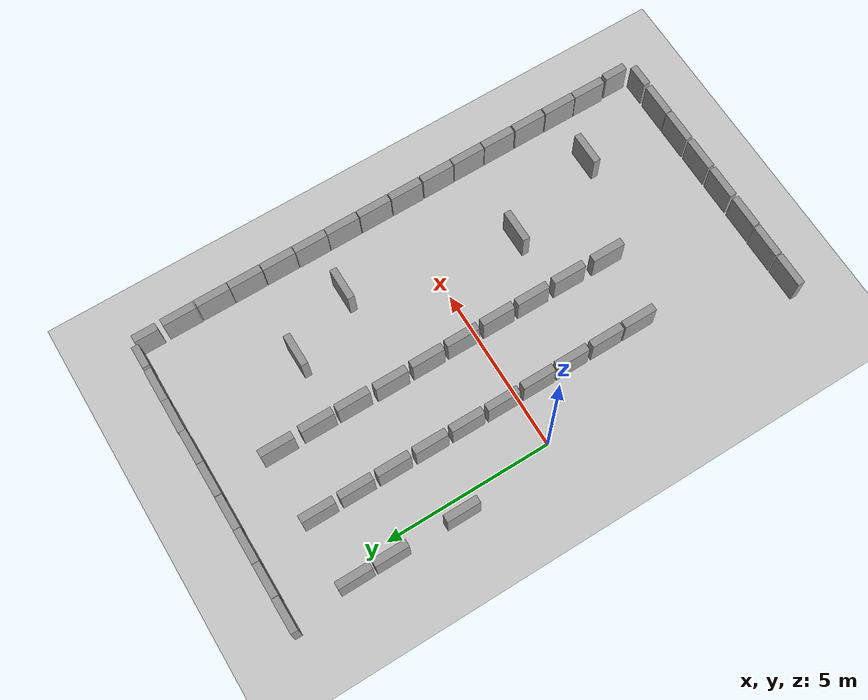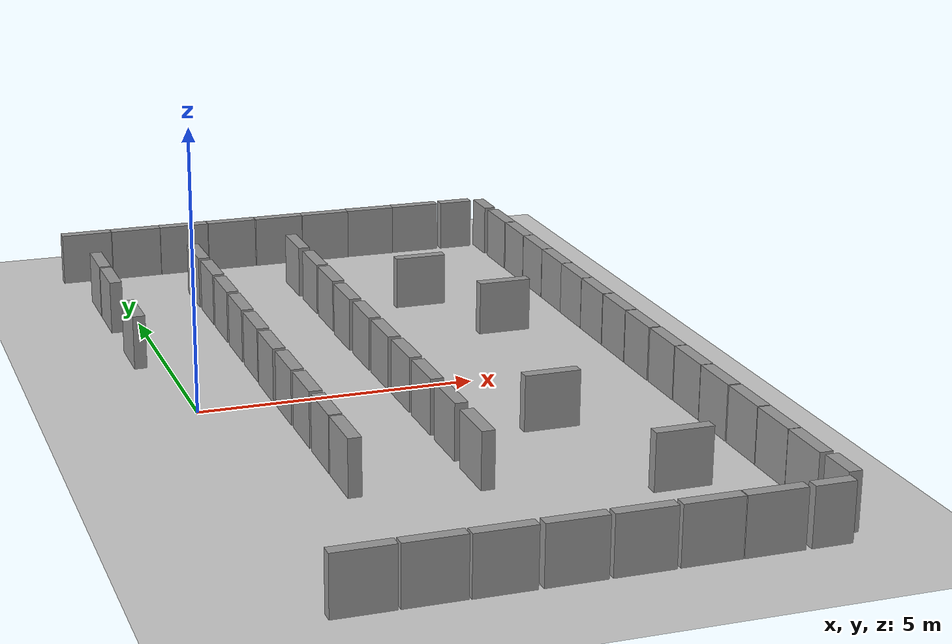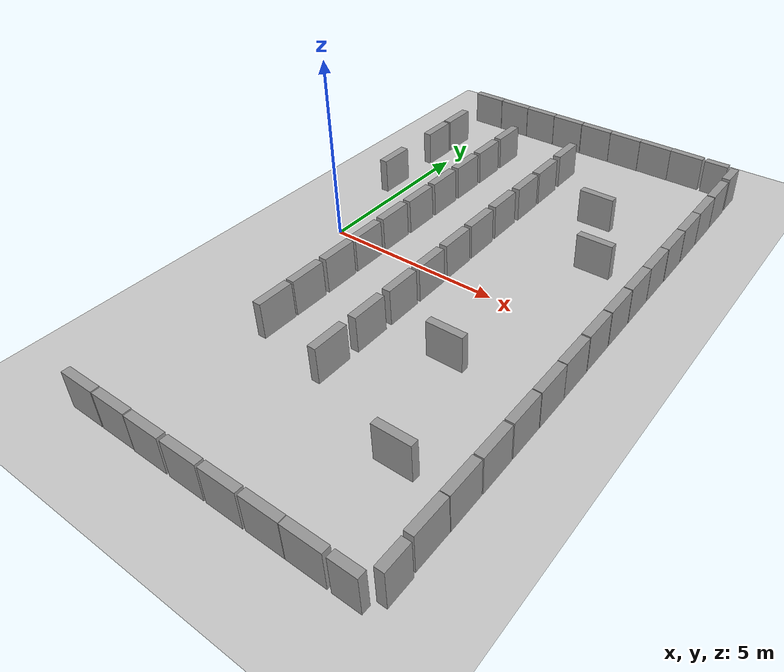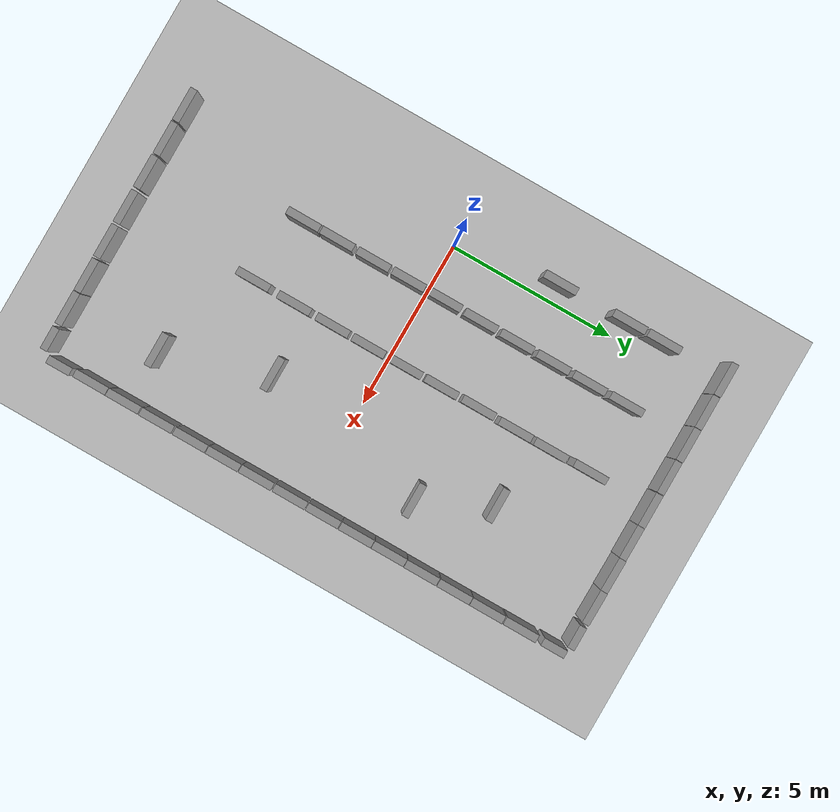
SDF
<sdf version="1.6">
 <world name="default">
  <model name="ground_plane">
   <static>1</static>
   <static>1</static>
   <link name="link">
    <collision name="collision">
     <geometry><plane><normal>0 0 1</normal><size>100 100</size></plane></geometry>
     <surface><friction><ode><mu>100</mu><mu2>50</mu2></ode></friction></surface>
    </collision>
    <visual name="visual">
     <cast_shadows>0</cast_shadows>
     <geometry><plane><normal>0 0 1</normal><size>100 100</size></plane></geometry>
     <material>
      <script><uri>file://media/materials/scripts/gazebo.material</uri><name>Gazebo/Grey</name></script>
     </material>
    </visual>
   </link>
  </model>
  <model name="unit_box_clone_6">
   <pose>-0.418694 8.11833 0.500001 0 -2e-06 6.5e-05</pose>
   <link name="link">
    <inertial>
     <mass>1</mass>
     <inertia>
      <ixx>0.166667</ixx>
      <ixy>0</ixy>
      <ixz>0</ixz>
      <iyy>0.166667</iyy>
      <iyz>0</iyz>
      <izz>0.166667</izz>
     </inertia>
    </inertial>
    <collision name="collision"><geometry><box><size>1 0.210541 1</size></box></geometry></collision>
    <visual name="visual">
     <geometry><box><size>1 0.210541 1</size></box></geometry>
     <material>
      <script><name>Gazebo/Grey</name><uri>file://media/materials/scripts/gazebo.material</uri></script>
     </material>
    </visual>
   </link>
  </model>
  <model name="unit_box_clone_7">
   <pose>0.592825 8.1112 0.500001 0 -2e-06 6.5e-05</pose>
   <link name="link">
    <inertial>
     <mass>1</mass>
     <inertia>
      <ixx>0.166667</ixx>
      <ixy>0</ixy>
      <ixz>0</ixz>
      <iyy>0.166667</iyy>
      <iyz>0</iyz>
      <izz>0.166667</izz>
     </inertia>
    </inertial>
    <collision name="collision"><geometry><box><size>1 0.210541 1</size></box></geometry></collision>
    <visual name="visual">
     <geometry><box><size>1 0.210541 1</size></box></geometry>
     <material>
      <script><name>Gazebo/Grey</name><uri>file://media/materials/scripts/gazebo.material</uri></script>
     </material>
    </visual>
   </link>
  </model>
  <model name="unit_box_clone_8">
   <pose>1.60042 8.10971 0.500001 0 -2e-06 6.5e-05</pose>
   <link name="link">
    <inertial>
     <mass>1</mass>
     <inertia>
      <ixx>0.166667</ixx>
      <ixy>0</ixy>
      <ixz>0</ixz>
      <iyy>0.166667</iyy>
      <iyz>0</iyz>
      <izz>0.166667</izz>
     </inertia>
    </inertial>
    <collision name="collision"><geometry><box><size>1 0.210541 1</size></box></geometry></collision>
    <visual name="visual">
     <geometry><box><size>1 0.210541 1</size></box></geometry>
     <material>
      <script><name>Gazebo/Grey</name><uri>file://media/materials/scripts/gazebo.material</uri></script>
     </material>
    </visual>
   </link>
  </model>
  <model name="unit_box_clone_9">
   <pose>2.60986 8.10252 0.500001 0 -2e-06 6.5e-05</pose>
   <link name="link">
    <inertial>
     <mass>1</mass>
     <inertia>
      <ixx>0.166667</ixx>
      <ixy>0</ixy>
      <ixz>0</ixz>
      <iyy>0.166667</iyy>
      <iyz>0</iyz>
      <izz>0.166667</izz>
     </inertia>
    </inertial>
    <collision name="collision"><geometry><box><size>1 0.210541 1</size></box></geometry></collision>
    <visual name="visual">
     <geometry><box><size>1 0.210541 1</size></box></geometry>
     <material>
      <script><name>Gazebo/Grey</name><uri>file://media/materials/scripts/gazebo.material</uri></script>
     </material>
    </visual>
   </link>
  </model>
  <model name="unit_box_clone_10">
   <pose>3.62648 8.09893 0.500001 0 -2e-06 6.5e-05</pose>
   <link name="link">
    <inertial>
     <mass>1</mass>
     <inertia>
      <ixx>0.166667</ixx>
      <ixy>0</ixy>
      <ixz>0</ixz>
      <iyy>0.166667</iyy>
      <iyz>0</iyz>
      <izz>0.166667</izz>
     </inertia>
    </inertial>
    <collision name="collision"><geometry><box><size>1 0.210541 1</size></box></geometry></collision>
    <visual name="visual">
     <geometry><box><size>1 0.210541 1</size></box></geometry>
     <material>
      <script><name>Gazebo/Grey</name><uri>file://media/materials/scripts/gazebo.material</uri></script>
     </material>
    </visual>
   </link>
  </model>
  <model name="unit_box_clone_11">
   <pose>4.63313 8.09552 0.49995 -0 -1e-06 -0.003223</pose>
   <link name="link">
    <inertial>
     <mass>1</mass>
     <inertia>
      <ixx>0.166667</ixx>
      <ixy>0</ixy>
      <ixz>0</ixz>
      <iyy>0.166667</iyy>
      <iyz>0</iyz>
      <izz>0.166667</izz>
     </inertia>
    </inertial>
    <collision name="collision"><geometry><box><size>1 0.210541 1</size></box></geometry></collision>
    <visual name="visual">
     <geometry><box><size>1 0.210541 1</size></box></geometry>
     <material>
      <script><name>Gazebo/Grey</name><uri>file://media/materials/scripts/gazebo.material</uri></script>
     </material>
    </visual>
   </link>
  </model>
  <model name="unit_box_clone_12">
   <pose>5.63393 8.10254 0.499997 -1e-06 -6e-06 -0.010652</pose>
   <link name="link">
    <inertial>
     <mass>1</mass>
     <inertia>
      <ixx>0.166667</ixx>
      <ixy>0</ixy>
      <ixz>0</ixz>
      <iyy>0.166667</iyy>
      <iyz>0</iyz>
      <izz>0.166667</izz>
     </inertia>
    </inertial>
    <collision name="collision"><geometry><box><size>1 0.210541 1</size></box></geometry></collision>
    <visual name="visual">
     <geometry><box><size>1 0.210541 1</size></box></geometry>
     <material>
      <script><name>Gazebo/Grey</name><uri>file://media/materials/scripts/gazebo.material</uri></script>
     </material>
    </visual>
   </link>
  </model>
  <model name="unit_box_clone_13">
   <pose>6.63405 8.10023 0.49999 1e-06 0 -0.011395</pose>
   <link name="link">
    <inertial>
     <mass>1</mass>
     <inertia>
      <ixx>0.166667</ixx>
      <ixy>0</ixy>
      <ixz>0</ixz>
      <iyy>0.166667</iyy>
      <iyz>0</iyz>
      <izz>0.166667</izz>
     </inertia>
    </inertial>
    <collision name="collision"><geometry><box><size>1 0.210541 1</size></box></geometry></collision>
    <visual name="visual">
     <geometry><box><size>1 0.210541 1</size></box></geometry>
     <material>
      <script><name>Gazebo/Grey</name><uri>file://media/materials/scripts/gazebo.material</uri></script>
     </material>
    </visual>
   </link>
  </model>
  <model name="unit_box_0_clone_0">
   <pose>8.11279 6.68232 0.5 0 -0 7.5e-05</pose>
   <link name="link">
    <inertial>
     <mass>1</mass>
     <inertia>
      <ixx>0.166667</ixx>
      <ixy>0</ixy>
      <ixz>0</ixz>
      <iyy>0.166667</iyy>
      <iyz>0</iyz>
      <izz>0.166667</izz>
     </inertia>
    </inertial>
    <collision name="collision"><geometry><box><size>0.230819 1 1</size></box></geometry></collision>
    <visual name="visual">
     <geometry><box><size>0.230819 1 1</size></box></geometry>
     <material>
      <script><name>Gazebo/Grey</name><uri>file://media/materials/scripts/gazebo.material</uri></script>
     </material>
    </visual>
   </link>
  </model>
  <model name="unit_box_0_clone_1">
   <pose>8.11915 5.6517 0.5 0 -0 7.5e-05</pose>
   <link name="link">
    <inertial>
     <mass>1</mass>
     <inertia>
      <ixx>0.166667</ixx>
      <ixy>0</ixy>
      <ixz>0</ixz>
      <iyy>0.166667</iyy>
      <iyz>0</iyz>
      <izz>0.166667</izz>
     </inertia>
    </inertial>
    <collision name="collision"><geometry><box><size>0.230819 1 1</size></box></geometry></collision>
    <visual name="visual">
     <geometry><box><size>0.230819 1 1</size></box></geometry>
     <material>
      <script><name>Gazebo/Grey</name><uri>file://media/materials/scripts/gazebo.material</uri></script>
     </material>
    </visual>
   </link>
  </model>
  <model name="unit_box_0_clone_2">
   <pose>8.11914 4.64017 0.5 0 -0 7.5e-05</pose>
   <link name="link">
    <inertial>
     <mass>1</mass>
     <inertia>
      <ixx>0.166667</ixx>
      <ixy>0</ixy>
      <ixz>0</ixz>
      <iyy>0.166667</iyy>
      <iyz>0</iyz>
      <izz>0.166667</izz>
     </inertia>
    </inertial>
    <collision name="collision"><geometry><box><size>0.230819 1 1</size></box></geometry></collision>
    <visual name="visual">
     <geometry><box><size>0.230819 1 1</size></box></geometry>
     <material>
      <script><name>Gazebo/Grey</name><uri>file://media/materials/scripts/gazebo.material</uri></script>
     </material>
    </visual>
   </link>
  </model>
  <model name="unit_box_0_clone_3">
   <pose>8.11914 3.62227 0.5 0 -0 7.5e-05</pose>
   <link name="link">
    <inertial>
     <mass>1</mass>
     <inertia>
      <ixx>0.166667</ixx>
      <ixy>0</ixy>
      <ixz>0</ixz>
      <iyy>0.166667</iyy>
      <iyz>0</iyz>
      <izz>0.166667</izz>
     </inertia>
    </inertial>
    <collision name="collision"><geometry><box><size>0.230819 1 1</size></box></geometry></collision>
    <visual name="visual">
     <geometry><box><size>0.230819 1 1</size></box></geometry>
     <material>
      <script><name>Gazebo/Grey</name><uri>file://media/materials/scripts/gazebo.material</uri></script>
     </material>
    </visual>
   </link>
  </model>
  <model name="unit_box_0_clone_4">
   <pose>8.11278 2.61074 0.5 0 -0 7.5e-05</pose>
   <link name="link">
    <inertial>
     <mass>1</mass>
     <inertia>
      <ixx>0.166667</ixx>
      <ixy>0</ixy>
      <ixz>0</ixz>
      <iyy>0.166667</iyy>
      <iyz>0</iyz>
      <izz>0.166667</izz>
     </inertia>
    </inertial>
    <collision name="collision"><geometry><box><size>0.230819 1 1</size></box></geometry></collision>
    <visual name="visual">
     <geometry><box><size>0.230819 1 1</size></box></geometry>
     <material>
      <script><name>Gazebo/Grey</name><uri>file://media/materials/scripts/gazebo.material</uri></script>
     </material>
    </visual>
   </link>
  </model>
  <model name="unit_box_0_clone_5">
   <pose>8.11277 1.5992 0.5 0 -0 7.5e-05</pose>
   <link name="link">
    <inertial>
     <mass>1</mass>
     <inertia>
      <ixx>0.166667</ixx>
      <ixy>0</ixy>
      <ixz>0</ixz>
      <iyy>0.166667</iyy>
      <iyz>0</iyz>
      <izz>0.166667</izz>
     </inertia>
    </inertial>
    <collision name="collision"><geometry><box><size>0.230819 1 1</size></box></geometry></collision>
    <visual name="visual">
     <geometry><box><size>0.230819 1 1</size></box></geometry>
     <material>
      <script><name>Gazebo/Grey</name><uri>file://media/materials/scripts/gazebo.material</uri></script>
     </material>
    </visual>
   </link>
  </model>
  <model name="unit_box_0_clone_6">
   <pose>8.11277 0.574942 0.5 0 -0 7.5e-05</pose>
   <link name="link">
    <inertial>
     <mass>1</mass>
     <inertia>
      <ixx>0.166667</ixx>
      <ixy>0</ixy>
      <ixz>0</ixz>
      <iyy>0.166667</iyy>
      <iyz>0</iyz>
      <izz>0.166667</izz>
     </inertia>
    </inertial>
    <collision name="collision"><geometry><box><size>0.230819 1 1</size></box></geometry></collision>
    <visual name="visual">
     <geometry><box><size>0.230819 1 1</size></box></geometry>
     <material>
      <script><name>Gazebo/Grey</name><uri>file://media/materials/scripts/gazebo.material</uri></script>
     </material>
    </visual>
   </link>
  </model>
  <model name="unit_box_0_clone_7">
   <pose>8.11276 -0.449316 0.5 0 -0 7.5e-05</pose>
   <link name="link">
    <inertial>
     <mass>1</mass>
     <inertia>
      <ixx>0.166667</ixx>
      <ixy>0</ixy>
      <ixz>0</ixz>
      <iyy>0.166667</iyy>
      <iyz>0</iyz>
      <izz>0.166667</izz>
     </inertia>
    </inertial>
    <collision name="collision"><geometry><box><size>0.230819 1 1</size></box></geometry></collision>
    <visual name="visual">
     <geometry><box><size>0.230819 1 1</size></box></geometry>
     <material>
      <script><name>Gazebo/Grey</name><uri>file://media/materials/scripts/gazebo.material</uri></script>
     </material>
    </visual>
   </link>
  </model>
  <model name="unit_box_0_clone_8">
   <pose>8.11912 -1.4863 0.5 0 -0 7.5e-05</pose>
   <link name="link">
    <inertial>
     <mass>1</mass>
     <inertia>
      <ixx>0.166667</ixx>
      <ixy>0</ixy>
      <ixz>0</ixz>
      <iyy>0.166667</iyy>
      <iyz>0</iyz>
      <izz>0.166667</izz>
     </inertia>
    </inertial>
    <collision name="collision"><geometry><box><size>0.230819 1 1</size></box></geometry></collision>
    <visual name="visual">
     <geometry><box><size>0.230819 1 1</size></box></geometry>
     <material>
      <script><name>Gazebo/Grey</name><uri>file://media/materials/scripts/gazebo.material</uri></script>
     </material>
    </visual>
   </link>
  </model>
  <model name="unit_box_0_clone_9">
   <pose>8.12548 -2.5042 0.5 0 -0 7.5e-05</pose>
   <link name="link">
    <inertial>
     <mass>1</mass>
     <inertia>
      <ixx>0.166667</ixx>
      <ixy>0</ixy>
      <ixz>0</ixz>
      <iyy>0.166667</iyy>
      <iyz>0</iyz>
      <izz>0.166667</izz>
     </inertia>
    </inertial>
    <collision name="collision"><geometry><box><size>0.230819 1 1</size></box></geometry></collision>
    <visual name="visual">
     <geometry><box><size>0.230819 1 1</size></box></geometry>
     <material>
      <script><name>Gazebo/Grey</name><uri>file://media/materials/scripts/gazebo.material</uri></script>
     </material>
    </visual>
   </link>
  </model>
  <model name="unit_box_0_clone_10">
   <pose>8.12331 -3.52222 0.5 0 -0 7.5e-05</pose>
   <link name="link">
    <inertial>
     <mass>1</mass>
     <inertia>
      <ixx>0.166667</ixx>
      <ixy>0</ixy>
      <ixz>0</ixz>
      <iyy>0.166667</iyy>
      <iyz>0</iyz>
      <izz>0.166667</izz>
     </inertia>
    </inertial>
    <collision name="collision"><geometry><box><size>0.230819 1 1</size></box></geometry></collision>
    <visual name="visual">
     <geometry><box><size>0.230819 1 1</size></box></geometry>
     <material>
      <script><name>Gazebo/Grey</name><uri>file://media/materials/scripts/gazebo.material</uri></script>
     </material>
    </visual>
   </link>
  </model>
  <model name="unit_box_0_clone_11">
   <pose>8.1233 -4.56315 0.5 0 -0 7.5e-05</pose>
   <link name="link">
    <inertial>
     <mass>1</mass>
     <inertia>
      <ixx>0.166667</ixx>
      <ixy>0</ixy>
      <ixz>0</ixz>
      <iyy>0.166667</iyy>
      <iyz>0</iyz>
      <izz>0.166667</izz>
     </inertia>
    </inertial>
    <collision name="collision"><geometry><box><size>0.230819 1 1</size></box></geometry></collision>
    <visual name="visual">
     <geometry><box><size>0.230819 1 1</size></box></geometry>
     <material>
      <script><name>Gazebo/Grey</name><uri>file://media/materials/scripts/gazebo.material</uri></script>
     </material>
    </visual>
   </link>
  </model>
  <model name="unit_box_0_clone_12">
   <pose>8.11815 -5.59377 0.5 0 -0 7.5e-05</pose>
   <link name="link">
    <inertial>
     <mass>1</mass>
     <inertia>
      <ixx>0.166667</ixx>
      <ixy>0</ixy>
      <ixz>0</ixz>
      <iyy>0.166667</iyy>
      <iyz>0</iyz>
      <izz>0.166667</izz>
     </inertia>
    </inertial>
    <collision name="collision"><geometry><box><size>0.230819 1 1</size></box></geometry></collision>
    <visual name="visual">
     <geometry><box><size>0.230819 1 1</size></box></geometry>
     <material>
      <script><name>Gazebo/Grey</name><uri>file://media/materials/scripts/gazebo.material</uri></script>
     </material>
    </visual>
   </link>
  </model>
  <model name="unit_box_0_clone_13">
   <pose>8.11333 -6.60775 0.499998 3e-06 1e-06 -0.00551</pose>
   <link name="link">
    <inertial>
     <mass>1</mass>
     <inertia>
      <ixx>0.166667</ixx>
      <ixy>0</ixy>
      <ixz>0</ixz>
      <iyy>0.166667</iyy>
      <iyz>0</iyz>
      <izz>0.166667</izz>
     </inertia>
    </inertial>
    <collision name="collision"><geometry><box><size>0.230819 1 1</size></box></geometry></collision>
    <visual name="visual">
     <geometry><box><size>0.230819 1 1</size></box></geometry>
     <material>
      <script><name>Gazebo/Grey</name><uri>file://media/materials/scripts/gazebo.material</uri></script>
     </material>
    </visual>
   </link>
  </model>
  <model name="unit_box_clone_15_clone_0">
   <pose>6.71206 -8.13139 0.500001 0 -2e-06 6.5e-05</pose>
   <link name="link">
    <inertial>
     <mass>1</mass>
     <inertia>
      <ixx>0.166667</ixx>
      <ixy>0</ixy>
      <ixz>0</ixz>
      <iyy>0.166667</iyy>
      <iyz>0</iyz>
      <izz>0.166667</izz>
     </inertia>
    </inertial>
    <collision name="collision"><geometry><box><size>1 0.210541 1</size></box></geometry></collision>
    <visual name="visual">
     <geometry><box><size>1 0.210541 1</size></box></geometry>
     <material>
      <script><name>Gazebo/Grey</name><uri>file://media/materials/scripts/gazebo.material</uri></script>
     </material>
    </visual>
   </link>
  </model>
  <model name="unit_box_clone_15_clone_1">
   <pose>5.69714 -8.13138 0.500001 0 -2e-06 6.5e-05</pose>
   <link name="link">
    <inertial>
     <mass>1</mass>
     <inertia>
      <ixx>0.166667</ixx>
      <ixy>0</ixy>
      <ixz>0</ixz>
      <iyy>0.166667</iyy>
      <iyz>0</iyz>
      <izz>0.166667</izz>
     </inertia>
    </inertial>
    <collision name="collision"><geometry><box><size>1 0.210541 1</size></box></geometry></collision>
    <visual name="visual">
     <geometry><box><size>1 0.210541 1</size></box></geometry>
     <material>
      <script><name>Gazebo/Grey</name><uri>file://media/materials/scripts/gazebo.material</uri></script>
     </material>
    </visual>
   </link>
  </model>
  <model name="unit_box_clone_15_clone_2">
   <pose>4.6388 -8.13756 0.500001 0 -2e-06 6.5e-05</pose>
   <link name="link">
    <inertial>
     <mass>1</mass>
     <inertia>
      <ixx>0.166667</ixx>
      <ixy>0</ixy>
      <ixz>0</ixz>
      <iyy>0.166667</iyy>
      <iyz>0</iyz>
      <izz>0.166667</izz>
     </inertia>
    </inertial>
    <collision name="collision"><geometry><box><size>1 0.210541 1</size></box></geometry></collision>
    <visual name="visual">
     <geometry><box><size>1 0.210541 1</size></box></geometry>
     <material>
      <script><name>Gazebo/Grey</name><uri>file://media/materials/scripts/gazebo.material</uri></script>
     </material>
    </visual>
   </link>
  </model>
  <model name="unit_box_clone_15_clone_3">
   <pose>3.57974 -8.13756 0.500001 0 -2e-06 6.5e-05</pose>
   <link name="link">
    <inertial>
     <mass>1</mass>
     <inertia>
      <ixx>0.166667</ixx>
      <ixy>0</ixy>
      <ixz>0</ixz>
      <iyy>0.166667</iyy>
      <iyz>0</iyz>
      <izz>0.166667</izz>
     </inertia>
    </inertial>
    <collision name="collision"><geometry><box><size>1 0.210541 1</size></box></geometry></collision>
    <visual name="visual">
     <geometry><box><size>1 0.210541 1</size></box></geometry>
     <material>
      <script><name>Gazebo/Grey</name><uri>file://media/materials/scripts/gazebo.material</uri></script>
     </material>
    </visual>
   </link>
  </model>
  <model name="unit_box_clone_15_clone_4">
   <pose>2.49814 -8.13755 0.500001 0 -2e-06 6.5e-05</pose>
   <link name="link">
    <inertial>
     <mass>1</mass>
     <inertia>
      <ixx>0.166667</ixx>
      <ixy>0</ixy>
      <ixz>0</ixz>
      <iyy>0.166667</iyy>
      <iyz>0</iyz>
      <izz>0.166667</izz>
     </inertia>
    </inertial>
    <collision name="collision"><geometry><box><size>1 0.210541 1</size></box></geometry></collision>
    <visual name="visual">
     <geometry><box><size>1 0.210541 1</size></box></geometry>
     <material>
      <script><name>Gazebo/Grey</name><uri>file://media/materials/scripts/gazebo.material</uri></script>
     </material>
    </visual>
   </link>
  </model>
  <model name="unit_box_clone_15_clone_5">
   <pose>1.46161 -8.12628 0.500001 0 -2e-06 6.5e-05</pose>
   <link name="link">
    <inertial>
     <mass>1</mass>
     <inertia>
      <ixx>0.166667</ixx>
      <ixy>0</ixy>
      <ixz>0</ixz>
      <iyy>0.166667</iyy>
      <iyz>0</iyz>
      <izz>0.166667</izz>
     </inertia>
    </inertial>
    <collision name="collision"><geometry><box><size>1 0.210541 1</size></box></geometry></collision>
    <visual name="visual">
     <geometry><box><size>1 0.210541 1</size></box></geometry>
     <material>
      <script><name>Gazebo/Grey</name><uri>file://media/materials/scripts/gazebo.material</uri></script>
     </material>
    </visual>
   </link>
  </model>
  <model name="unit_box_clone_15_clone_6">
   <pose>0.425078 -8.12627 0.500001 0 -2e-06 6.5e-05</pose>
   <link name="link">
    <inertial>
     <mass>1</mass>
     <inertia>
      <ixx>0.166667</ixx>
      <ixy>0</ixy>
      <ixz>0</ixz>
      <iyy>0.166667</iyy>
      <iyz>0</iyz>
      <izz>0.166667</izz>
     </inertia>
    </inertial>
    <collision name="collision"><geometry><box><size>1 0.210541 1</size></box></geometry></collision>
    <visual name="visual">
     <geometry><box><size>1 0.210541 1</size></box></geometry>
     <material>
      <script><name>Gazebo/Grey</name><uri>file://media/materials/scripts/gazebo.material</uri></script>
     </material>
    </visual>
   </link>
  </model>
  <model name="unit_box_0_clone_4_clone_1_clone_10_clone">
   <pose>-0.482286 6.18572 0.5 0 -0 7.5e-05</pose>
   <link name="link">
    <inertial>
     <mass>1</mass>
     <inertia>
      <ixx>0.166667</ixx>
      <ixy>0</ixy>
      <ixz>0</ixz>
      <iyy>0.166667</iyy>
      <iyz>0</iyz>
      <izz>0.166667</izz>
     </inertia>
    </inertial>
    <collision name="collision"><geometry><box><size>0.230819 1 1</size></box></geometry></collision>
    <visual name="visual">
     <geometry><box><size>0.230819 1 1</size></box></geometry>
     <material>
      <script><name>Gazebo/Grey</name><uri>file://media/materials/scripts/gazebo.material</uri></script>
     </material>
    </visual>
   </link>
  </model>
  <model name="unit_box_0_clone_4_clone_1_clone_10_clone_0">
   <pose>-0.482292 5.11618 0.5 0 -0 7.5e-05</pose>
   <link name="link">
    <inertial>
     <mass>1</mass>
     <inertia>
      <ixx>0.166667</ixx>
      <ixy>0</ixy>
      <ixz>0</ixz>
      <iyy>0.166667</iyy>
      <iyz>0</iyz>
      <izz>0.166667</izz>
     </inertia>
    </inertial>
    <collision name="collision"><geometry><box><size>0.230819 1 1</size></box></geometry></collision>
    <visual name="visual">
     <geometry><box><size>0.230819 1 1</size></box></geometry>
     <material>
      <script><name>Gazebo/Grey</name><uri>file://media/materials/scripts/gazebo.material</uri></script>
     </material>
    </visual>
   </link>
  </model>
  <model name="unit_box_0_clone_4_clone_1_clone_10_clone_2">
   <pose>-0.472918 2.98968 0.5 0 -0 7.5e-05</pose>
   <link name="link">
    <inertial>
     <mass>1</mass>
     <inertia>
      <ixx>0.166667</ixx>
      <ixy>0</ixy>
      <ixz>0</ixz>
      <iyy>0.166667</iyy>
      <iyz>0</iyz>
      <izz>0.166667</izz>
     </inertia>
    </inertial>
    <collision name="collision"><geometry><box><size>0.230819 1 1</size></box></geometry></collision>
    <visual name="visual">
     <geometry><box><size>0.230819 1 1</size></box></geometry>
     <material>
      <script><name>Gazebo/Grey</name><uri>file://media/materials/scripts/gazebo.material</uri></script>
     </material>
    </visual>
   </link>
  </model>
  <model name="unit_box_0_clone_4_clone_1_clone_10_clone_clone">
   <pose>1.47105 6.14198 0.5 0 -0 7.5e-05</pose>
   <link name="link">
    <inertial>
     <mass>1</mass>
     <inertia>
      <ixx>0.166667</ixx>
      <ixy>0</ixy>
      <ixz>0</ixz>
      <iyy>0.166667</iyy>
      <iyz>0</iyz>
      <izz>0.166667</izz>
     </inertia>
    </inertial>
    <collision name="collision"><geometry><box><size>0.230819 1 1</size></box></geometry></collision>
    <visual name="visual">
     <geometry><box><size>0.230819 1 1</size></box></geometry>
     <material>
      <script><name>Gazebo/Grey</name><uri>file://media/materials/scripts/gazebo.material</uri></script>
     </material>
    </visual>
   </link>
  </model>
  <model name="unit_box_0_clone_4_clone_1_clone_10_clone_clone_0">
   <pose>1.48169 5.00224 0.5 0 -0 7.5e-05</pose>
   <link name="link">
    <inertial>
     <mass>1</mass>
     <inertia>
      <ixx>0.166667</ixx>
      <ixy>0</ixy>
      <ixz>0</ixz>
      <iyy>0.166667</iyy>
      <iyz>0</iyz>
      <izz>0.166667</izz>
     </inertia>
    </inertial>
    <collision name="collision"><geometry><box><size>0.230819 1 1</size></box></geometry></collision>
    <visual name="visual">
     <geometry><box><size>0.230819 1 1</size></box></geometry>
     <material>
      <script><name>Gazebo/Grey</name><uri>file://media/materials/scripts/gazebo.material</uri></script>
     </material>
    </visual>
   </link>
  </model>
  <model name="unit_box_0_clone_4_clone_1_clone_10_clone_clone_1">
   <pose>1.48169 3.8838 0.5 0 -0 7.5e-05</pose>
   <link name="link">
    <inertial>
     <mass>1</mass>
     <inertia>
      <ixx>0.166667</ixx>
      <ixy>0</ixy>
      <ixz>0</ixz>
      <iyy>0.166667</iyy>
      <iyz>0</iyz>
      <izz>0.166667</izz>
     </inertia>
    </inertial>
    <collision name="collision"><geometry><box><size>0.230819 1 1</size></box></geometry></collision>
    <visual name="visual">
     <geometry><box><size>0.230819 1 1</size></box></geometry>
     <material>
      <script><name>Gazebo/Grey</name><uri>file://media/materials/scripts/gazebo.material</uri></script>
     </material>
    </visual>
   </link>
  </model>
  <model name="unit_box_0_clone_4_clone_1_clone_10_clone_clone_2">
   <pose>1.48168 2.75471 0.5 0 -0 7.5e-05</pose>
   <link name="link">
    <inertial>
     <mass>1</mass>
     <inertia>
      <ixx>0.166667</ixx>
      <ixy>0</ixy>
      <ixz>0</ixz>
      <iyy>0.166667</iyy>
      <iyz>0</iyz>
      <izz>0.166667</izz>
     </inertia>
    </inertial>
    <collision name="collision"><geometry><box><size>0.230819 1 1</size></box></geometry></collision>
    <visual name="visual">
     <geometry><box><size>0.230819 1 1</size></box></geometry>
     <material>
      <script><name>Gazebo/Grey</name><uri>file://media/materials/scripts/gazebo.material</uri></script>
     </material>
    </visual>
   </link>
  </model>
  <model name="unit_box_0_clone_4_clone_1_clone_10_clone_clone_3">
   <pose>1.48167 1.63627 0.5 0 -0 7.5e-05</pose>
   <link name="link">
    <inertial>
     <mass>1</mass>
     <inertia>
      <ixx>0.166667</ixx>
      <ixy>0</ixy>
      <ixz>0</ixz>
      <iyy>0.166667</iyy>
      <iyz>0</iyz>
      <izz>0.166667</izz>
     </inertia>
    </inertial>
    <collision name="collision"><geometry><box><size>0.230819 1 1</size></box></geometry></collision>
    <visual name="visual">
     <geometry><box><size>0.230819 1 1</size></box></geometry>
     <material>
      <script><name>Gazebo/Grey</name><uri>file://media/materials/scripts/gazebo.material</uri></script>
     </material>
    </visual>
   </link>
  </model>
  <model name="unit_box_0_clone_4_clone_1_clone_10_clone_clone_4">
   <pose>1.47102 0.528487 0.5 0 -0 7.5e-05</pose>
   <link name="link">
    <inertial>
     <mass>1</mass>
     <inertia>
      <ixx>0.166667</ixx>
      <ixy>0</ixy>
      <ixz>0</ixz>
      <iyy>0.166667</iyy>
      <iyz>0</iyz>
      <izz>0.166667</izz>
     </inertia>
    </inertial>
    <collision name="collision"><geometry><box><size>0.230819 1 1</size></box></geometry></collision>
    <visual name="visual">
     <geometry><box><size>0.230819 1 1</size></box></geometry>
     <material>
      <script><name>Gazebo/Grey</name><uri>file://media/materials/scripts/gazebo.material</uri></script>
     </material>
    </visual>
   </link>
  </model>
  <model name="unit_box_0_clone_4_clone_1_clone_10_clone_clone_5">
   <pose>1.48667 -0.590057 0.5 0 -0 7.5e-05</pose>
   <link name="link">
    <inertial>
     <mass>1</mass>
     <inertia>
      <ixx>0.166667</ixx>
      <ixy>0</ixy>
      <ixz>0</ixz>
      <iyy>0.166667</iyy>
      <iyz>0</iyz>
      <izz>0.166667</izz>
     </inertia>
    </inertial>
    <collision name="collision"><geometry><box><size>0.230819 1 1</size></box></geometry></collision>
    <visual name="visual">
     <geometry><box><size>0.230819 1 1</size></box></geometry>
     <material>
      <script><name>Gazebo/Grey</name><uri>file://media/materials/scripts/gazebo.material</uri></script>
     </material>
    </visual>
   </link>
  </model>
  <model name="unit_box_0_clone_4_clone_1_clone_10_clone_clone_6">
   <pose>1.49529 -1.67718 0.5 0 -0 7.5e-05</pose>
   <link name="link">
    <inertial>
     <mass>1</mass>
     <inertia>
      <ixx>0.166667</ixx>
      <ixy>0</ixy>
      <ixz>0</ixz>
      <iyy>0.166667</iyy>
      <iyz>0</iyz>
      <izz>0.166667</izz>
     </inertia>
    </inertial>
    <collision name="collision"><geometry><box><size>0.230819 1 1</size></box></geometry></collision>
    <visual name="visual">
     <geometry><box><size>0.230819 1 1</size></box></geometry>
     <material>
      <script><name>Gazebo/Grey</name><uri>file://media/materials/scripts/gazebo.material</uri></script>
     </material>
    </visual>
   </link>
  </model>
  <model name="unit_box_0_clone_4_clone_1_clone_10_clone_clone_7">
   <pose>1.49529 -2.79018 0.5 0 -0 7.5e-05</pose>
   <link name="link">
    <inertial>
     <mass>1</mass>
     <inertia>
      <ixx>0.166667</ixx>
      <ixy>0</ixy>
      <ixz>0</ixz>
      <iyy>0.166667</iyy>
      <iyz>0</iyz>
      <izz>0.166667</izz>
     </inertia>
    </inertial>
    <collision name="collision"><geometry><box><size>0.230819 1 1</size></box></geometry></collision>
    <visual name="visual">
     <geometry><box><size>0.230819 1 1</size></box></geometry>
     <material>
      <script><name>Gazebo/Grey</name><uri>file://media/materials/scripts/gazebo.material</uri></script>
     </material>
    </visual>
   </link>
  </model>
  <model name="unit_box_0_clone_4_clone_1_clone_10_clone_clone_8">
   <pose>1.49528 -3.84279 0.5 0 -0 7.5e-05</pose>
   <link name="link">
    <inertial>
     <mass>1</mass>
     <inertia>
      <ixx>0.166667</ixx>
      <ixy>0</ixy>
      <ixz>0</ixz>
      <iyy>0.166667</iyy>
      <iyz>0</iyz>
      <izz>0.166667</izz>
     </inertia>
    </inertial>
    <collision name="collision"><geometry><box><size>0.230819 1 1</size></box></geometry></collision>
    <visual name="visual">
     <geometry><box><size>0.230819 1 1</size></box></geometry>
     <material>
      <script><name>Gazebo/Grey</name><uri>file://media/materials/scripts/gazebo.material</uri></script>
     </material>
    </visual>
   </link>
  </model>
  <model name="unit_box_0_clone_4_clone_1_clone_10_clone_clone_11">
   <pose>3.53045 6.20423 0.5 0 -0 7.5e-05</pose>
   <link name="link">
    <inertial>
     <mass>1</mass>
     <inertia>
      <ixx>0.166667</ixx>
      <ixy>0</ixy>
      <ixz>0</ixz>
      <iyy>0.166667</iyy>
      <iyz>0</iyz>
      <izz>0.166667</izz>
     </inertia>
    </inertial>
    <collision name="collision"><geometry><box><size>0.230819 1 1</size></box></geometry></collision>
    <visual name="visual">
     <geometry><box><size>0.230819 1 1</size></box></geometry>
     <material>
      <script><name>Gazebo/Grey</name><uri>file://media/materials/scripts/gazebo.material</uri></script>
     </material>
    </visual>
   </link>
  </model>
  <model name="unit_box_0_clone_4_clone_1_clone_10_clone_clone_12">
   <pose>3.55185 4.99472 0.5 0 -0 7.5e-05</pose>
   <link name="link">
    <inertial>
     <mass>1</mass>
     <inertia>
      <ixx>0.166667</ixx>
      <ixy>0</ixy>
      <ixz>0</ixz>
      <iyy>0.166667</iyy>
      <iyz>0</iyz>
      <izz>0.166667</izz>
     </inertia>
    </inertial>
    <collision name="collision"><geometry><box><size>0.230819 1 1</size></box></geometry></collision>
    <visual name="visual">
     <geometry><box><size>0.230819 1 1</size></box></geometry>
     <material>
      <script><name>Gazebo/Grey</name><uri>file://media/materials/scripts/gazebo.material</uri></script>
     </material>
    </visual>
   </link>
  </model>
  <model name="unit_box_0_clone_4_clone_1_clone_10_clone_clone_13">
   <pose>3.55184 3.90294 0.5 0 -0 7.5e-05</pose>
   <link name="link">
    <inertial>
     <mass>1</mass>
     <inertia>
      <ixx>0.166667</ixx>
      <ixy>0</ixy>
      <ixz>0</ixz>
      <iyy>0.166667</iyy>
      <iyz>0</iyz>
      <izz>0.166667</izz>
     </inertia>
    </inertial>
    <collision name="collision"><geometry><box><size>0.230819 1 1</size></box></geometry></collision>
    <visual name="visual">
     <geometry><box><size>0.230819 1 1</size></box></geometry>
     <material>
      <script><name>Gazebo/Grey</name><uri>file://media/materials/scripts/gazebo.material</uri></script>
     </material>
    </visual>
   </link>
  </model>
  <model name="unit_box_0_clone_4_clone_1_clone_10_clone_clone_14">
   <pose>3.53043 2.74695 0.5 0 -0 7.5e-05</pose>
   <link name="link">
    <inertial>
     <mass>1</mass>
     <inertia>
      <ixx>0.166667</ixx>
      <ixy>0</ixy>
      <ixz>0</ixz>
      <iyy>0.166667</iyy>
      <iyz>0</iyz>
      <izz>0.166667</izz>
     </inertia>
    </inertial>
    <collision name="collision"><geometry><box><size>0.230819 1 1</size></box></geometry></collision>
    <visual name="visual">
     <geometry><box><size>0.230819 1 1</size></box></geometry>
     <material>
      <script><name>Gazebo/Grey</name><uri>file://media/materials/scripts/gazebo.material</uri></script>
     </material>
    </visual>
   </link>
  </model>
  <model name="unit_box_0_clone_4_clone_1_clone_10_clone_clone_14_clone">
   <pose>3.5475 1.60534 0.5 0 -0 7.5e-05</pose>
   <link name="link">
    <inertial>
     <mass>1</mass>
     <inertia>
      <ixx>0.166667</ixx>
      <ixy>0</ixy>
      <ixz>0</ixz>
      <iyy>0.166667</iyy>
      <iyz>0</iyz>
      <izz>0.166667</izz>
     </inertia>
    </inertial>
    <collision name="collision"><geometry><box><size>0.230819 1 1</size></box></geometry></collision>
    <visual name="visual">
     <geometry><box><size>0.230819 1 1</size></box></geometry>
     <material>
      <script><name>Gazebo/Grey</name><uri>file://media/materials/scripts/gazebo.material</uri></script>
     </material>
    </visual>
   </link>
  </model>
  <model name="unit_box_0_clone_4_clone_1_clone_10_clone_clone_14_clone_0">
   <pose>3.5581 0.502307 0.5 0 -0 7.5e-05</pose>
   <link name="link">
    <inertial>
     <mass>1</mass>
     <inertia>
      <ixx>0.166667</ixx>
      <ixy>0</ixy>
      <ixz>0</ixz>
      <iyy>0.166667</iyy>
      <iyz>0</iyz>
      <izz>0.166667</izz>
     </inertia>
    </inertial>
    <collision name="collision"><geometry><box><size>0.230819 1 1</size></box></geometry></collision>
    <visual name="visual">
     <geometry><box><size>0.230819 1 1</size></box></geometry>
     <material>
      <script><name>Gazebo/Grey</name><uri>file://media/materials/scripts/gazebo.material</uri></script>
     </material>
    </visual>
   </link>
  </model>
  <model name="unit_box_0_clone_4_clone_1_clone_10_clone_clone_14_clone_1">
   <pose>3.5687 -0.632543 0.5 0 -0 7.5e-05</pose>
   <link name="link">
    <inertial>
     <mass>1</mass>
     <inertia>
      <ixx>0.166667</ixx>
      <ixy>0</ixy>
      <ixz>0</ixz>
      <iyy>0.166667</iyy>
      <iyz>0</iyz>
      <izz>0.166667</izz>
     </inertia>
    </inertial>
    <collision name="collision"><geometry><box><size>0.230819 1 1</size></box></geometry></collision>
    <visual name="visual">
     <geometry><box><size>0.230819 1 1</size></box></geometry>
     <material>
      <script><name>Gazebo/Grey</name><uri>file://media/materials/scripts/gazebo.material</uri></script>
     </material>
    </visual>
   </link>
  </model>
  <model name="unit_box_0_clone_4_clone_1_clone_10_clone_clone_14_clone_2">
   <pose>3.5687 -1.74618 0.5 0 -0 7.5e-05</pose>
   <link name="link">
    <inertial>
     <mass>1</mass>
     <inertia>
      <ixx>0.166667</ixx>
      <ixy>0</ixy>
      <ixz>0</ixz>
      <iyy>0.166667</iyy>
      <iyz>0</iyz>
      <izz>0.166667</izz>
     </inertia>
    </inertial>
    <collision name="collision"><geometry><box><size>0.230819 1 1</size></box></geometry></collision>
    <visual name="visual">
     <geometry><box><size>0.230819 1 1</size></box></geometry>
     <material>
      <script><name>Gazebo/Grey</name><uri>file://media/materials/scripts/gazebo.material</uri></script>
     </material>
    </visual>
   </link>
  </model>
  <model name="unit_box_0_clone_4_clone_1_clone_10_clone_clone_14_clone_3">
   <pose>3.56869 -2.93406 0.5 0 -0 7.5e-05</pose>
   <link name="link">
    <inertial>
     <mass>1</mass>
     <inertia>
      <ixx>0.166667</ixx>
      <ixy>0</ixy>
      <ixz>0</ixz>
      <iyy>0.166667</iyy>
      <iyz>0</iyz>
      <izz>0.166667</izz>
     </inertia>
    </inertial>
    <collision name="collision"><geometry><box><size>0.230819 1 1</size></box></geometry></collision>
    <visual name="visual">
     <geometry><box><size>0.230819 1 1</size></box></geometry>
     <material>
      <script><name>Gazebo/Grey</name><uri>file://media/materials/scripts/gazebo.material</uri></script>
     </material>
    </visual>
   </link>
  </model>
  <model name="unit_box_0_clone_4_clone_1_clone_10_clone_clone_14_clone_4">
   <pose>3.55808 -4.20679 0.5 0 -0 7.5e-05</pose>
   <link name="link">
    <inertial>
     <mass>1</mass>
     <inertia>
      <ixx>0.166667</ixx>
      <ixy>0</ixy>
      <ixz>0</ixz>
      <iyy>0.166667</iyy>
      <iyz>0</iyz>
      <izz>0.166667</izz>
     </inertia>
    </inertial>
    <collision name="collision"><geometry><box><size>0.230819 1 1</size></box></geometry></collision>
    <visual name="visual">
     <geometry><box><size>0.230819 1 1</size></box></geometry>
     <material>
      <script><name>Gazebo/Grey</name><uri>file://media/materials/scripts/gazebo.material</uri></script>
     </material>
    </visual>
   </link>
  </model>
  <model name="unit_box_clone_15_clone_2_clone">
   <pose>5.54219 4.48913 0.500001 0 -2e-06 6.5e-05</pose>
   <link name="link">
    <inertial>
     <mass>1</mass>
     <inertia>
      <ixx>0.166667</ixx>
      <ixy>0</ixy>
      <ixz>0</ixz>
      <iyy>0.166667</iyy>
      <iyz>0</iyz>
      <izz>0.166667</izz>
     </inertia>
    </inertial>
    <collision name="collision"><geometry><box><size>1 0.210541 1</size></box></geometry></collision>
    <visual name="visual">
     <geometry><box><size>1 0.210541 1</size></box></geometry>
     <material>
      <script><name>Gazebo/Grey</name><uri>file://media/materials/scripts/gazebo.material</uri></script>
     </material>
    </visual>
   </link>
  </model>
  <model name="unit_box_clone_15_clone_2_clone_0">
   <pose>6.54635 2.48077 0.500001 0 -2e-06 6.5e-05</pose>
   <link name="link">
    <inertial>
     <mass>1</mass>
     <inertia>
      <ixx>0.166667</ixx>
      <ixy>0</ixy>
      <ixz>0</ixz>
      <iyy>0.166667</iyy>
      <iyz>0</iyz>
      <izz>0.166667</izz>
     </inertia>
    </inertial>
    <collision name="collision"><geometry><box><size>1 0.210541 1</size></box></geometry></collision>
    <visual name="visual">
     <geometry><box><size>1 0.210541 1</size></box></geometry>
     <material>
      <script><name>Gazebo/Grey</name><uri>file://media/materials/scripts/gazebo.material</uri></script>
     </material>
    </visual>
   </link>
  </model>
  <model name="unit_box_clone_15_clone_2_clone_1">
   <pose>5.49785 -2.49581 0.500001 0 -2e-06 6.5e-05</pose>
   <link name="link">
    <inertial>
     <mass>1</mass>
     <inertia>
      <ixx>0.166667</ixx>
      <ixy>0</ixy>
      <ixz>0</ixz>
      <iyy>0.166667</iyy>
      <iyz>0</iyz>
      <izz>0.166667</izz>
     </inertia>
    </inertial>
    <collision name="collision"><geometry><box><size>1 0.210541 1</size></box></geometry></collision>
    <visual name="visual">
     <geometry><box><size>1 0.210541 1</size></box></geometry>
     <material>
      <script><name>Gazebo/Grey</name><uri>file://media/materials/scripts/gazebo.material</uri></script>
     </material>
    </visual>
   </link>
  </model>
  <model name="unit_box_clone_15_clone_2_clone_2">
   <pose>6.48724 -5.50834 0.500001 0 -2e-06 6.5e-05</pose>
   <link name="link">
    <inertial>
     <mass>1</mass>
     <inertia>
      <ixx>0.166667</ixx>
      <ixy>0</ixy>
      <ixz>0</ixz>
      <iyy>0.166667</iyy>
      <iyz>0</iyz>
      <izz>0.166667</izz>
     </inertia>
    </inertial>
    <collision name="collision"><geometry><box><size>1 0.210541 1</size></box></geometry></collision>
    <visual name="visual">
     <geometry><box><size>1 0.210541 1</size></box></geometry>
     <material>
      <script><name>Gazebo/Grey</name><uri>file://media/materials/scripts/gazebo.material</uri></script>
     </material>
    </visual>
   </link>
  </model>
  <model name="unit_box_clone_15_clone_12_clone_clone_1">
   <pose>7.65017 -8.13382 0.499998 -2e-06 7e-06 0.000936</pose>
   <link name="link">
    <inertial>
     <mass>1</mass>
     <inertia>
      <ixx>0.166667</ixx>
      <ixy>0</ixy>
      <ixz>0</ixz>
      <iyy>0.166667</iyy>
      <iyz>0</iyz>
      <izz>0.166667</izz>
     </inertia>
    </inertial>
    <collision name="collision"><geometry><box><size>0.683466 0.210541 1</size></box></geometry></collision>
    <visual name="visual">
     <geometry><box><size>0.683466 0.210541 1</size></box></geometry>
     <material>
      <script><name>Gazebo/Grey</name><uri>file://media/materials/scripts/gazebo.material</uri></script>
     </material>
    </visual>
   </link>
  </model>
  <model name="unit_box_clone_15_clone_12_clone_clone_2">
   <pose>7.55619 8.08617 0.499998 -2e-06 -7e-06 -0.000537</pose>
   <link name="link">
    <inertial>
     <mass>1</mass>
     <inertia>
      <ixx>0.166667</ixx>
      <ixy>0</ixy>
      <ixz>0</ixz>
      <iyy>0.166667</iyy>
      <iyz>0</iyz>
      <izz>0.166667</izz>
     </inertia>
    </inertial>
    <collision name="collision"><geometry><box><size>0.683466 0.210541 1</size></box></geometry></collision>
    <visual name="visual">
     <geometry><box><size>0.683466 0.210541 1</size></box></geometry>
     <material>
      <script><name>Gazebo/Grey</name><uri>file://media/materials/scripts/gazebo.material</uri></script>
     </material>
    </visual>
   </link>
  </model>
  <model name="unit_box_0_clone_4_clone_1_clone_8_clone_clone_0">
   <pose>8.09855 7.69029 0.499997 6e-06 3e-06 8.9e-05</pose>
   <link name="link">
    <inertial>
     <mass>1</mass>
     <inertia>
      <ixx>0.166667</ixx>
      <ixy>0</ixy>
      <ixz>0</ixz>
      <iyy>0.166667</iyy>
      <iyz>0</iyz>
      <izz>0.166667</izz>
     </inertia>
    </inertial>
    <collision name="collision"><geometry><box><size>0.230819 0.710597 1</size></box></geometry></collision>
    <visual name="visual">
     <geometry><box><size>0.230819 0.710597 1</size></box></geometry>
     <material>
      <script><name>Gazebo/Grey</name><uri>file://media/materials/scripts/gazebo.material</uri></script>
     </material>
    </visual>
   </link>
  </model>
  <model name="unit_box_0_clone_4_clone_1_clone_8_clone_clone_1">
   <pose>8.15016 -7.55932 0.499997 -7e-06 -2e-06 0.000516</pose>
   <link name="link">
    <inertial>
     <mass>1</mass>
     <inertia>
      <ixx>0.166667</ixx>
      <ixy>0</ixy>
      <ixz>0</ixz>
      <iyy>0.166667</iyy>
      <iyz>0</iyz>
      <izz>0.166667</izz>
     </inertia>
    </inertial>
    <collision name="collision"><geometry><box><size>0.230819 0.710597 1</size></box></geometry></collision>
    <visual name="visual">
     <geometry><box><size>0.230819 0.710597 1</size></box></geometry>
     <material>
      <script><name>Gazebo/Grey</name><uri>file://media/materials/scripts/gazebo.material</uri></script>
     </material>
    </visual>
   </link>
  </model>
 </world>
</sdf>
